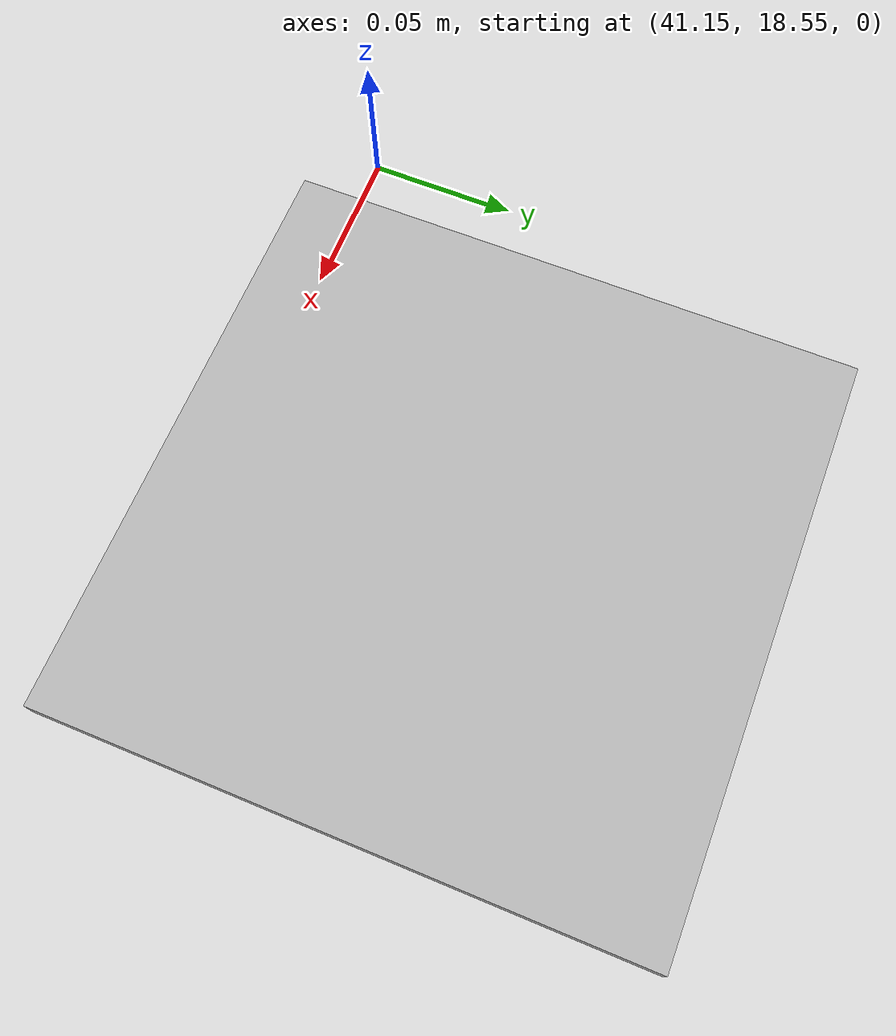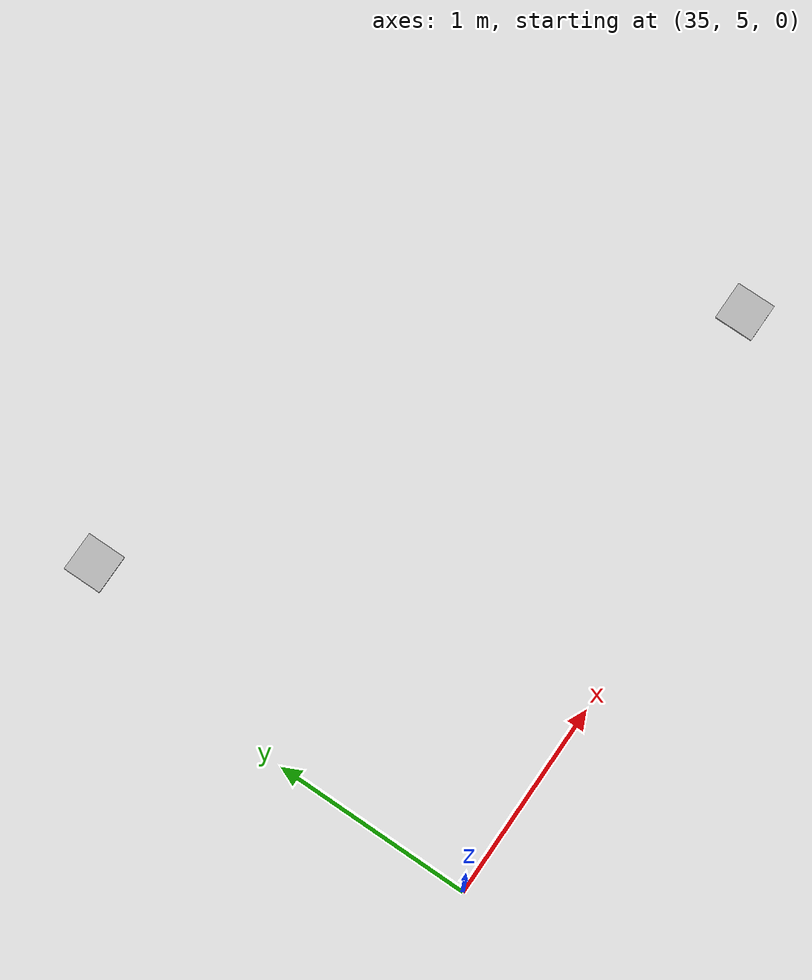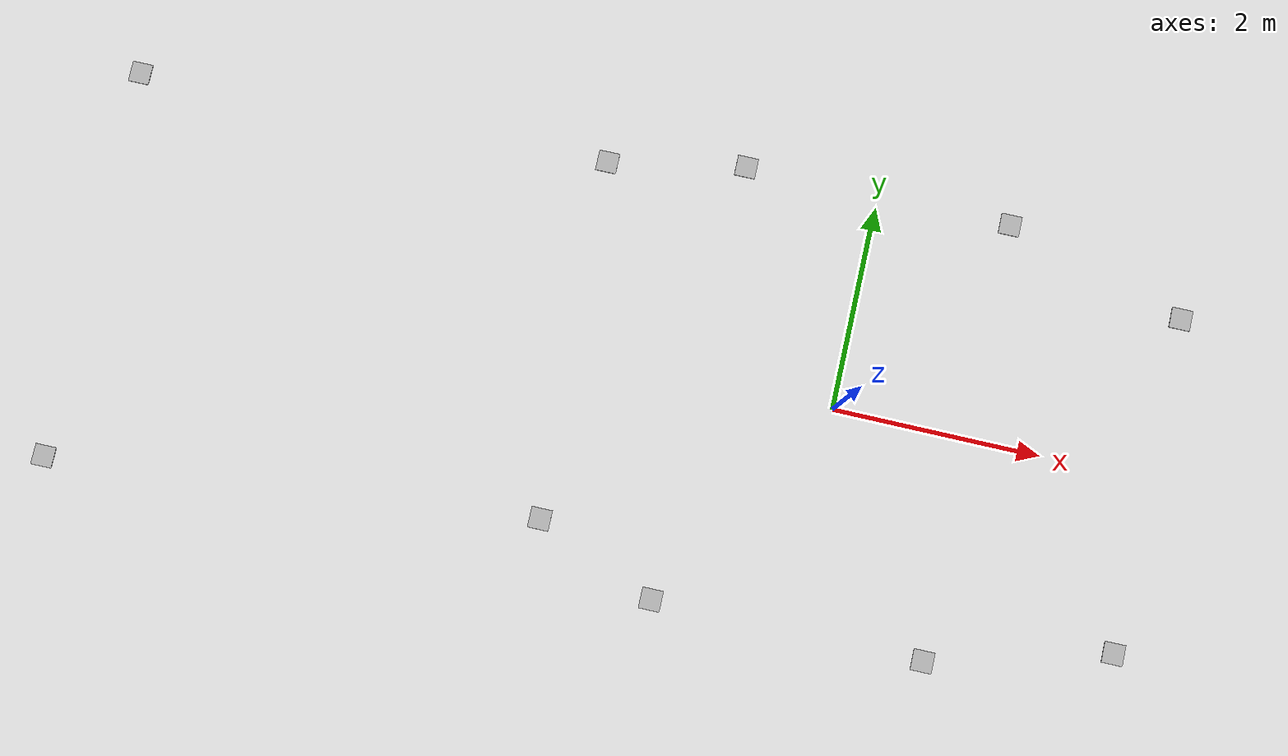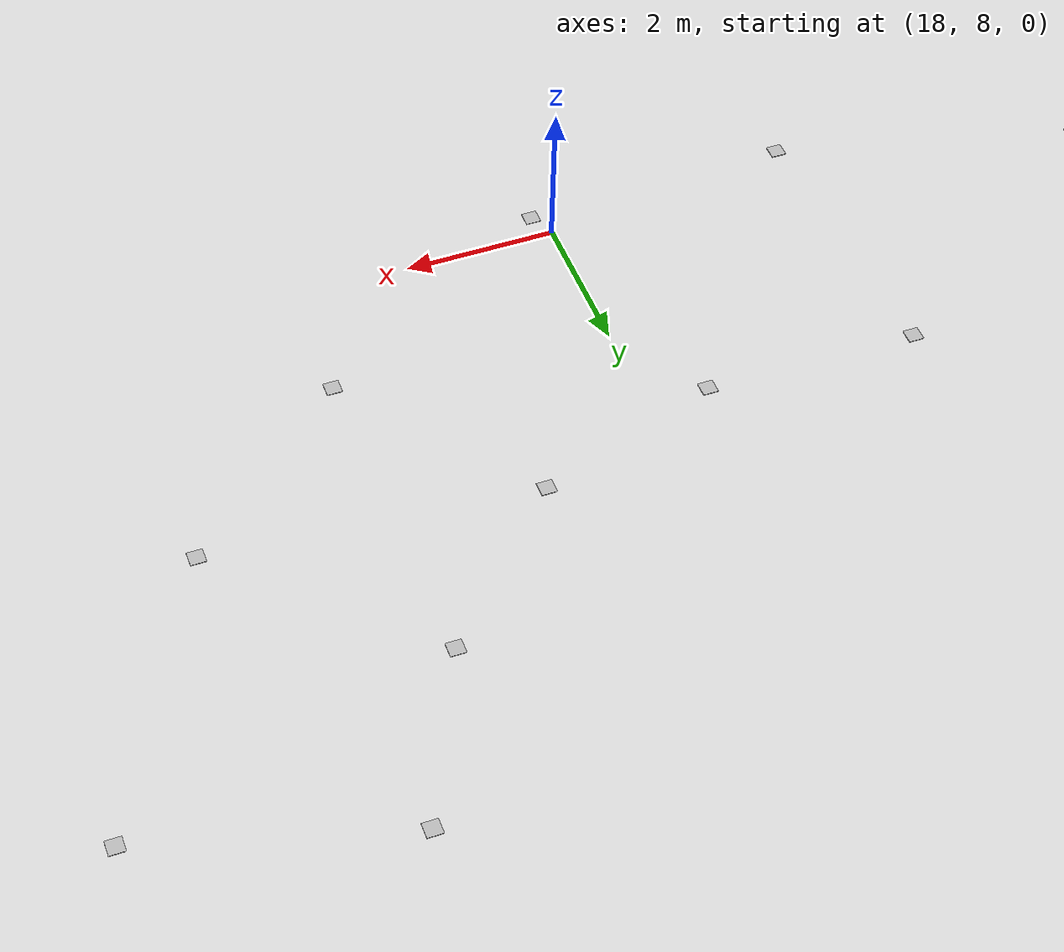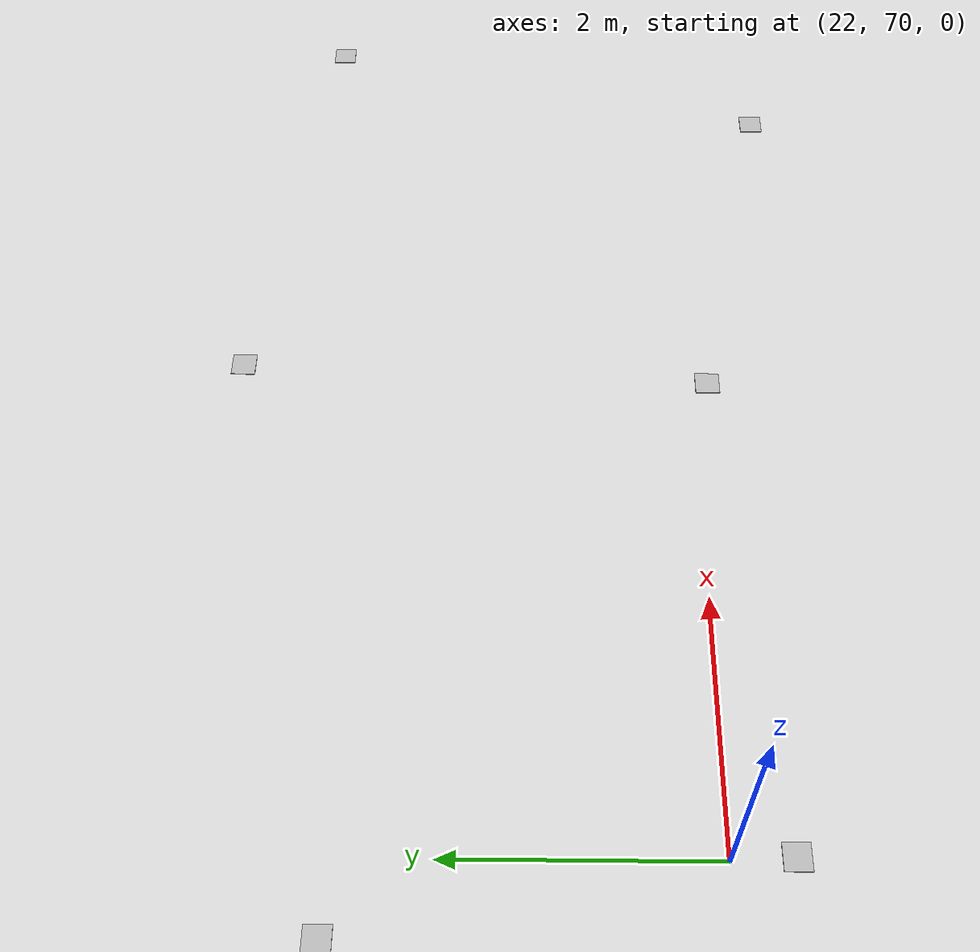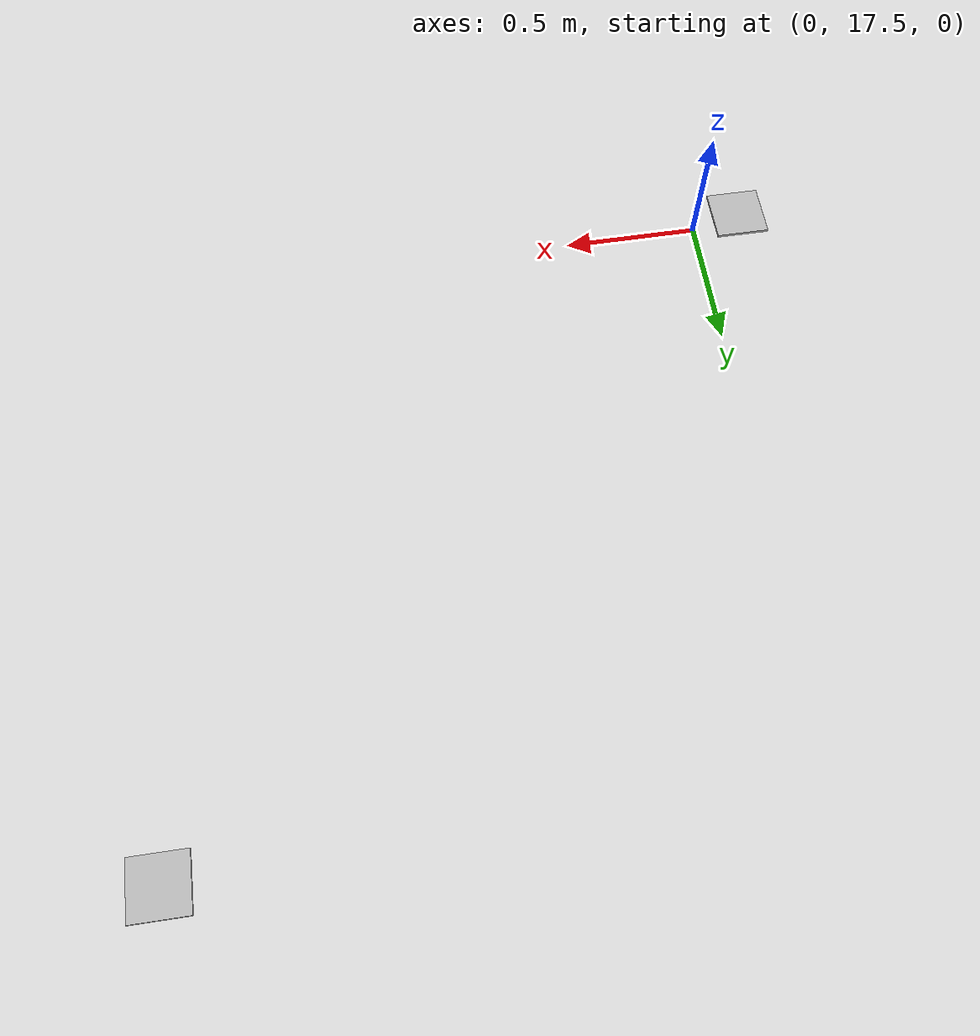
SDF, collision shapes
<?xml version='1.0' encoding='UTF-8'?>
<sdf version="1.4">
  <model name="some track">
    <include>
      <uri>model://cone_yellow</uri>
      <pose>3.027329968496089 -1.6650662607083389 0 0 0 0</pose>
      <name>cone_right</name>
    </include>
    <include>
      <uri>model://cone_yellow</uri>
      <pose>9.474034728033397 -1.9990680012949822 0 0 0 0</pose>
      <name>cone_right</name>
    </include>
    <include>
      <uri>model://cone_yellow</uri>
      <pose>14.392724605239101 -4.6059636627065395 0 0 0 0</pose>
      <name>cone_right</name>
    </include>
    <include>
      <uri>model://cone_yellow</uri>
      <pose>21.47315055272353 -6.16888157465029 0 0 0 0</pose>
      <name>cone_right</name>
    </include>
    <include>
      <uri>model://cone_yellow</uri>
      <pose>28.27962880257163 -4.242374572550827 0 0 0 0</pose>
      <name>cone_right</name>
    </include>
    <include>
      <uri>model://cone_yellow</uri>
      <pose>33.79515887836171 0.0746154102028318 0 0 0 0</pose>
      <name>cone_right</name>
    </include>
    <include>
      <uri>model://cone_yellow</uri>
      <pose>37.97875054252228 5.429926051759233 0 0 0 0</pose>
      <name>cone_right</name>
    </include>
    <include>
      <uri>model://cone_yellow</uri>
      <pose>40.45887580009664 11.88696595016761 0 0 0 0</pose>
      <name>cone_right</name>
    </include>
    <include>
      <uri>model://cone_yellow</uri>
      <pose>41.267752553381186 18.62989722831308 0 0 0 0</pose>
      <name>cone_right</name>
    </include>
    <include>
      <uri>model://cone_yellow</uri>
      <pose>41.04125478771543 25.26421154580791 0 0 0 0</pose>
      <name>cone_right</name>
    </include>
    <include>
      <uri>model://cone_yellow</uri>
      <pose>40.485133027038636 31.70694705922904 0 0 0 0</pose>
      <name>cone_right</name>
    </include>
    <include>
      <uri>model://cone_yellow</uri>
      <pose>40.236905148028534 37.999603327788414 0 0 0 0</pose>
      <name>cone_right</name>
    </include>
    <include>
      <uri>model://cone_yellow</uri>
      <pose>40.61943882001937 44.24708126243079 0 0 0 0</pose>
      <name>cone_right</name>
    </include>
    <include>
      <uri>model://cone_yellow</uri>
      <pose>41.4404427352798 50.56251065915522 0 0 0 0</pose>
      <name>cone_right</name>
    </include>
    <include>
      <uri>model://cone_yellow</uri>
      <pose>41.47405207661533 57.27677329995261 0 0 0 0</pose>
      <name>cone_right</name>
    </include>
    <include>
      <uri>model://cone_yellow</uri>
      <pose>21.468290092959084 72.7419892074473 0 0 0 0</pose>
      <name>cone_right</name>
    </include>
    <include>
      <uri>model://cone_yellow</uri>
      <pose>10.531979037203268 55.6582248911712 0 0 0 0</pose>
      <name>cone_right</name>
    </include>
    <include>
      <uri>model://cone_yellow</uri>
      <pose>10.531732854243629 48.89809797176127 0 0 0 0</pose>
      <name>cone_right</name>
    </include>
    <include>
      <uri>model://cone_yellow</uri>
      <pose>12.10143926226985 42.26140099305921 0 0 0 0</pose>
      <name>cone_right</name>
    </include>
    <include>
      <uri>model://cone_yellow</uri>
      <pose>15.151593644037982 36.18519415401645 0 0 0 0</pose>
      <name>cone_right</name>
    </include>
    <include>
      <uri>model://cone_yellow</uri>
      <pose>18.945296068769437 30.82137605421312 0 0 0 0</pose>
      <name>cone_right</name>
    </include>
    <include>
      <uri>model://cone_yellow</uri>
      <pose>22.005079024603376 25.43415281728733 0 0 0 0</pose>
      <name>cone_right</name>
    </include>
    <include>
      <uri>model://cone_yellow</uri>
      <pose>23.107156590107863 19.561500303759743 0 0 0 0</pose>
      <name>cone_right</name>
    </include>
    <include>
      <uri>model://cone_yellow</uri>
      <pose>6.487660632547149 15.298738351433244 0 0 0 0</pose>
      <name>cone_right</name>
    </include>
    <include>
      <uri>model://cone_yellow</uri>
      <pose>2.1479658842320073 19.693639128497594 0 0 0 0</pose>
      <name>cone_right</name>
    </include>
    <include>
      <uri>model://cone_yellow</uri>
      <pose>-1.95289864727353 24.446736623546297 0 0 0 0</pose>
      <name>cone_right</name>
    </include>
    <include>
      <uri>model://cone_yellow</uri>
      <pose>-4.364739529925682 29.780340803077365 0 0 0 0</pose>
      <name>cone_right</name>
    </include>
    <include>
      <uri>model://cone_yellow</uri>
      <pose>-6.295214213840515 35.93227462158473 0 0 0 0</pose>
      <name>cone_right</name>
    </include>
    <include>
      <uri>model://cone_yellow</uri>
      <pose>-9.183003450733308 42.01716439235755 0 0 0 0</pose>
      <name>cone_right</name>
    </include>
    <include>
      <uri>model://cone_yellow</uri>
      <pose>-14.206972445681645 46.91930906005257 0 0 0 0</pose>
      <name>cone_right</name>
    </include>
    <include>
      <uri>model://cone_yellow</uri>
      <pose>-27.812226412000488 44.31033770908859 0 0 0 0</pose>
      <name>cone_right</name>
    </include>
    <include>
      <uri>model://cone_yellow</uri>
      <pose>-30.7227918264037 38.25573705340714 0 0 0 0</pose>
      <name>cone_right</name>
    </include>
    <include>
      <uri>model://cone_yellow</uri>
      <pose>-31.87105946999347 31.436656192780084 0 0 0 0</pose>
      <name>cone_right</name>
    </include>
    <include>
      <uri>model://cone_yellow</uri>
      <pose>-31.921430435181996 24.746050327414082 0 0 0 0</pose>
      <name>cone_right</name>
    </include>
    <include>
      <uri>model://cone_yellow</uri>
      <pose>-30.126745471980826 18.1692816399225 0 0 0 0</pose>
      <name>cone_right</name>
    </include>
    <include>
      <uri>model://cone_yellow</uri>
      <pose>-27.46536094129992 12.110308763627812 0 0 0 0</pose>
      <name>cone_right</name>
    </include>
    <include>
      <uri>model://cone_yellow</uri>
      <pose>-24.774914642741656 6.145141590855151 0 0 0 0</pose>
      <name>cone_right</name>
    </include>
    <include>
      <uri>model://cone_yellow</uri>
      <pose>-19.75354707405777 1.164364422226377 0 0 0 0</pose>
      <name>cone_right</name>
    </include>
    <include>
      <uri>model://cone_yellow</uri>
      <pose>-13.33687252409103 -1.591891144842337 0 0 0 0</pose>
      <name>cone_right</name>
    </include>
    <include>
      <uri>model://cone_yellow</uri>
      <pose>-2.48520590420668 -1.618397313359118 0 0 0 0</pose>
      <name>cone_right</name>
    </include>
    <include>
      <uri>model://cone_yellow</uri>
      <pose>-7.209244203734663 -2.072631765236814 0 0 0 0</pose>
      <name>cone_right</name>
    </include>
    <include>
      <uri>model://cone_yellow</uri>
      <pose>40.48537324342291 62.246966620644244 0 0 0 0</pose>
      <name>cone_right</name>
    </include>
    <include>
      <uri>model://cone_yellow</uri>
      <pose>38.16877753884669 67.37981592686215 0 0 0 0</pose>
      <name>cone_right</name>
    </include>
    <include>
      <uri>model://cone_yellow</uri>
      <pose>34.353208143074085 70.74115087075707 0 0 0 0</pose>
      <name>cone_right</name>
    </include>
    <include>
      <uri>model://cone_yellow</uri>
      <pose>30.073625637084753 73.22934625715374 0 0 0 0</pose>
      <name>cone_right</name>
    </include>
    <include>
      <uri>model://cone_yellow</uri>
      <pose>26.170048316260846 73.78136729242178 0 0 0 0</pose>
      <name>cone_right</name>
    </include>
    <include>
      <uri>model://cone_yellow</uri>
      <pose>18.106598193952877 71.02126211608163 0 0 0 0</pose>
      <name>cone_right</name>
    </include>
    <include>
      <uri>model://cone_yellow</uri>
      <pose>14.508603946223769 67.42326786835254 0 0 0 0</pose>
      <name>cone_right</name>
    </include>
    <include>
      <uri>model://cone_yellow</uri>
      <pose>22.493193920636298 16.11488414388678 0 0 0 0</pose>
      <name>cone_right</name>
    </include>
    <include>
      <uri>model://cone_yellow</uri>
      <pose>21.458154479508746 13.946230076762387 0 0 0 0</pose>
      <name>cone_right</name>
    </include>
    <include>
      <uri>model://cone_yellow</uri>
      <pose>19.634513559426868 12.073301564245867 0 0 0 0</pose>
      <name>cone_right</name>
    </include>
    <include>
      <uri>model://cone_yellow</uri>
      <pose>17.1701339376946 11.235412492856899 0 0 0 0</pose>
      <name>cone_right</name>
    </include>
    <include>
      <uri>model://cone_yellow</uri>
      <pose>14.360741168919823 11.284700085291544 0 0 0 0</pose>
      <name>cone_right</name>
    </include>
    <include>
      <uri>model://cone_yellow</uri>
      <pose>11.649923585014331 11.580425639899413 0 0 0 0</pose>
      <name>cone_right</name>
    </include>
    <include>
      <uri>model://cone_yellow</uri>
      <pose>9.185543963282068 13.009765820504125 0 0 0 0</pose>
      <name>cone_right</name>
    </include>
    <include>
      <uri>model://cone_yellow</uri>
      <pose>-18.31693261525001 48.54611996588339 0 0 0 0</pose>
      <name>cone_right</name>
    </include>
    <include>
      <uri>model://cone_yellow</uri>
      <pose>-21.816351678109818 48.64469515075268 0 0 0 0</pose>
      <name>cone_right</name>
    </include>
    <include>
      <uri>model://cone_yellow</uri>
      <pose>-25.365058333404278 47.461792932321195 0 0 0 0</pose>
      <name>cone_right</name>
    </include>
    <include>
      <uri>model://cone_yellow</uri>
      <pose>11.725968097581287 62.08966676907369 0 0 0 0</pose>
      <name>cone_right</name>
    </include>
    <include>
      <uri>model://cone_blue</uri>
      <pose>3.070187802835974 1.5846511433186166 0 0 0 0</pose>
      <name>cone_left</name>
    </include>
    <include>
      <uri>model://cone_blue</uri>
      <pose>9.80820676018408 1.2337062025318613 0 0 0 0</pose>
      <name>cone_left</name>
    </include>
    <include>
      <uri>model://cone_blue</uri>
      <pose>16.23973611310383 -1.9318192219899835 0 0 0 0</pose>
      <name>cone_left</name>
    </include>
    <include>
      <uri>model://cone_blue</uri>
      <pose>21.542439637078992 -2.919620270478343 0 0 0 0</pose>
      <name>cone_left</name>
    </include>
    <include>
      <uri>model://cone_blue</uri>
      <pose>27.05163500235222 -1.2332997601503954 0 0 0 0</pose>
      <name>cone_left</name>
    </include>
    <include>
      <uri>model://cone_blue</uri>
      <pose>31.59603368900195 2.4675943907881996 0 0 0 0</pose>
      <name>cone_left</name>
    </include>
    <include>
      <uri>model://cone_blue</uri>
      <pose>35.28562026193866 7.2491427215936906 0 0 0 0</pose>
      <name>cone_left</name>
    </include>
    <include>
      <uri>model://cone_blue</uri>
      <pose>37.3433140936881 12.812047164743213 0 0 0 0</pose>
      <name>cone_left</name>
    </include>
    <include>
      <uri>model://cone_blue</uri>
      <pose>38.024752789804225 18.84309322602353 0 0 0 0</pose>
      <name>cone_left</name>
    </include>
    <include>
      <uri>model://cone_blue</uri>
      <pose>37.797189944751395 25.06788708313273 0 0 0 0</pose>
      <name>cone_left</name>
    </include>
    <include>
      <uri>model://cone_blue</uri>
      <pose>37.24730033318942 31.425985413018875 0 0 0 0</pose>
      <name>cone_left</name>
    </include>
    <include>
      <uri>model://cone_blue</uri>
      <pose>36.9873587002369 37.94530891145644 0 0 0 0</pose>
      <name>cone_left</name>
    </include>
    <include>
      <uri>model://cone_blue</uri>
      <pose>37.38148165161911 44.52660474195515 0 0 0 0</pose>
      <name>cone_left</name>
    </include>
    <include>
      <uri>model://cone_blue</uri>
      <pose>38.21694627221841 50.97672141786475 0 0 0 0</pose>
      <name>cone_left</name>
    </include>
    <include>
      <uri>model://cone_blue</uri>
      <pose>38.22936739461043 57.09097417626596 0 0 0 0</pose>
      <name>cone_left</name>
    </include>
    <include>
      <uri>model://cone_blue</uri>
      <pose>22.043851567638736 69.54335997153005 0 0 0 0</pose>
      <name>cone_left</name>
    </include>
    <include>
      <uri>model://cone_blue</uri>
      <pose>13.748524027666466 55.19310305301899 0 0 0 0</pose>
      <name>cone_left</name>
    </include>
    <include>
      <uri>model://cone_blue</uri>
      <pose>13.776792867806211 49.07722225369201 0 0 0 0</pose>
      <name>cone_left</name>
    </include>
    <include>
      <uri>model://cone_blue</uri>
      <pose>15.208996468169403 43.21302497975867 0 0 0 0</pose>
      <name>cone_left</name>
    </include>
    <include>
      <uri>model://cone_blue</uri>
      <pose>17.96591394340118 37.810648322116016 0 0 0 0</pose>
      <name>cone_left</name>
    </include>
    <include>
      <uri>model://cone_blue</uri>
      <pose>21.579153316610977 32.72539706197343 0 0 0 0</pose>
      <name>cone_left</name>
    </include>
    <include>
      <uri>model://cone_blue</uri>
      <pose>24.917193185937712 26.877098107780352 0 0 0 0</pose>
      <name>cone_left</name>
    </include>
    <include>
      <uri>model://cone_blue</uri>
      <pose>26.343754795627575 19.856342729517245 0 0 0 0</pose>
      <name>cone_left</name>
    </include>
    <include>
      <uri>model://cone_blue</uri>
      <pose>4.47619000976062 12.745997484508678 0 0 0 0</pose>
      <name>cone_left</name>
    </include>
    <include>
      <uri>model://cone_blue</uri>
      <pose>-0.19434105518186262 17.44061933240755 0 0 0 0</pose>
      <name>cone_left</name>
    </include>
    <include>
      <uri>model://cone_blue</uri>
      <pose>-4.502874499512328 22.431761895913464 0 0 0 0</pose>
      <name>cone_left</name>
    </include>
    <include>
      <uri>model://cone_blue</uri>
      <pose>-7.405920149916325 28.634164360903945 0 0 0 0</pose>
      <name>cone_left</name>
    </include>
    <include>
      <uri>model://cone_blue</uri>
      <pose>-9.389363627671026 34.93792085913784 0 0 0 0</pose>
      <name>cone_left</name>
    </include>
    <include>
      <uri>model://cone_blue</uri>
      <pose>-12.022179405003532 40.435526032714684 0 0 0 0</pose>
      <name>cone_left</name>
    </include>
    <include>
      <uri>model://cone_blue</uri>
      <pose>-16.175053984102117 44.332968970634994 0 0 0 0</pose>
      <name>cone_left</name>
    </include>
    <include>
      <uri>model://cone_blue</uri>
      <pose>-25.11505126702607 42.497123370591275 0 0 0 0</pose>
      <name>cone_left</name>
    </include>
    <include>
      <uri>model://cone_blue</uri>
      <pose>-27.728285527579843 36.992632930104456 0 0 0 0</pose>
      <name>cone_left</name>
    </include>
    <include>
      <uri>model://cone_blue</uri>
      <pose>-28.638520666221325 31.10021469399115 0 0 0 0</pose>
      <name>cone_left</name>
    </include>
    <include>
      <uri>model://cone_blue</uri>
      <pose>-28.673686997517756 24.86713939838598 0 0 0 0</pose>
      <name>cone_left</name>
    </include>
    <include>
      <uri>model://cone_blue</uri>
      <pose>-27.070770357207437 19.275408259205204 0 0 0 0</pose>
      <name>cone_left</name>
    </include>
    <include>
      <uri>model://cone_blue</uri>
      <pose>-24.485811338887743 13.408301123684465 0 0 0 0</pose>
      <name>cone_left</name>
    </include>
    <include>
      <uri>model://cone_blue</uri>
      <pose>-21.87073133400932 7.603983360643947 0 0 0 0</pose>
      <name>cone_left</name>
    </include>
    <include>
      <uri>model://cone_blue</uri>
      <pose>-17.775153145455434 3.742824711482237 0 0 0 0</pose>
      <name>cone_left</name>
    </include>
    <include>
      <uri>model://cone_blue</uri>
      <pose>-12.356808084130934 1.5068140191779038 0 0 0 0</pose>
      <name>cone_left</name>
    </include>
    <include>
      <uri>model://cone_blue</uri>
      <pose>-2.621476239769983 1.8792079660991021 0 0 0 0</pose>
      <name>cone_left</name>
    </include>
    <include>
      <uri>model://cone_blue</uri>
      <pose>-7.254667648922435 1.742937630535792 0 0 0 0</pose>
      <name>cone_left</name>
    </include>
    <include>
      <uri>model://cone_blue</uri>
      <pose>37.351155525466844 61.06595704576225 0 0 0 0</pose>
      <name>cone_left</name>
    </include>
    <include>
      <uri>model://cone_blue</uri>
      <pose>35.352523937205 64.74525610597155 0 0 0 0</pose>
      <name>cone_left</name>
    </include>
    <include>
      <uri>model://cone_blue</uri>
      <pose>32.49084689037555 67.97032071430314 0 0 0 0</pose>
      <name>cone_left</name>
    </include>
    <include>
      <uri>model://cone_blue</uri>
      <pose>29.127303862339563 69.24690878843441 0 0 0 0</pose>
      <name>cone_left</name>
    </include>
    <include>
      <uri>model://cone_blue</uri>
      <pose>26.012328020469983 69.87778997159786 0 0 0 0</pose>
      <name>cone_left</name>
    </include>
    <include>
      <uri>model://cone_blue</uri>
      <pose>19.14163763508043 67.57113064565647 0 0 0 0</pose>
      <name>cone_left</name>
    </include>
    <include>
      <uri>model://cone_blue</uri>
      <pose>16.627970420913513 64.6631626920124 0 0 0 0</pose>
      <name>cone_left</name>
    </include>
    <include>
      <uri>model://cone_blue</uri>
      <pose>25.746175021322887 15.178419887628515 0 0 0 0</pose>
      <name>cone_left</name>
    </include>
    <include>
      <uri>model://cone_blue</uri>
      <pose>23.873246508806364 11.6790008247687 0 0 0 0</pose>
      <name>cone_left</name>
    </include>
    <include>
      <uri>model://cone_blue</uri>
      <pose>21.556729664378032 9.658209534948249 0 0 0 0</pose>
      <name>cone_left</name>
    </include>
    <include>
      <uri>model://cone_blue</uri>
      <pose>18.155885786387508 7.637418245127787 0 0 0 0</pose>
      <name>cone_left</name>
    </include>
    <include>
      <uri>model://cone_blue</uri>
      <pose>14.557891538658403 7.5388430602585 0 0 0 0</pose>
      <name>cone_left</name>
    </include>
    <include>
      <uri>model://cone_blue</uri>
      <pose>10.565596551452131 8.573882501386048 0 0 0 0</pose>
      <name>cone_left</name>
    </include>
    <include>
      <uri>model://cone_blue</uri>
      <pose>7.657628597808063 10.298948236598637 0 0 0 0</pose>
      <name>cone_left</name>
    </include>
    <include>
      <uri>model://cone_blue</uri>
      <pose>-18.80980853959646 45.2931388651968 0 0 0 0</pose>
      <name>cone_left</name>
    </include>
    <include>
      <uri>model://cone_blue</uri>
      <pose>-22.112077232717695 45.14527608789287 0 0 0 0</pose>
      <name>cone_left</name>
    </include>
    <include>
      <uri>model://cone_blue</uri>
      <pose>14.68539804503412 60.10621903833402 0 0 0 0</pose>
      <name>cone_left</name>
    </include>
    <include>
      <uri>model://cone_orange_big</uri>
      <pose>-1.3 2.125 0 0 0 0</pose>
      <name>cone_orange_big</name>
    </include>
    <include>
      <uri>model://cone_orange_big</uri>
      <pose>-1.3 -2.125 0 0 0 0</pose>
      <name>cone_orange_big</name>
    </include>
    <include>
      <uri>model://cone_orange_big</uri>
      <pose>1.3 2.125 0 0 0 0</pose>
      <name>cone_orange_big</name>
    </include>
    <include>
      <uri>model://cone_orange_big</uri>
      <pose>1.3 -2.125 0 0 0 0</pose>
      <name>cone_orange_big</name>
    </include>
  </model>
</sdf>

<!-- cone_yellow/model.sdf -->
<sdf version='1.4'>
  <model name="cone_yellow">
    <link name="link">
    <collision name="collision"><geometry><box><size> 0.2 0.2 0.01</size>
             </box></geometry></collision>
      <visual name="visual">
        <geometry>
          <mesh>
            <uri>model://YellowCone.dae</uri>
            <scale>1 1 1</scale>
          </mesh>
        </geometry>
        <material>
            <script>
              <uri>model://cone_yellow/materials/scripts</uri>
              <uri>model://cone_yellow/materials/textures</uri>
              <name>cone_yellow/Image</name>
            </script>
        </material>
      </visual>
    </link>
  </model>
</sdf>

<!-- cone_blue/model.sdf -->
<sdf version='1.4'>
  <model name="cone_blue">
    <link name="link">
    <collision name="collision"><geometry><box><size> 0.2 0.2 0.01</size>
             </box></geometry></collision>
      <visual name="visual">
        <geometry>
          <mesh>
            <uri>model://BlueCone.dae</uri>
            <scale>1 1 1</scale>
          </mesh>
        </geometry>
        <material>
            <script>
              <uri>model://cone_blue/materials/scripts</uri>
              <uri>model://cone_blue/materials/textures</uri>
              <name>cone_blue/Image</name>
            </script>
        </material>
      </visual>
    </link>
  </model>
</sdf>

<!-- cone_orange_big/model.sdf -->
<sdf version='1.4'>
  <model name="cone_orange_big">
    <link name="link">
    <collision name="collision"><geometry><box><size> 0.2 0.2 0.01</size>
             </box></geometry></collision>
      <visual name="visual">
        <geometry>
          <mesh>
            <uri>model://BigOrangeCone.dae</uri>
            <scale>1 1 1</scale>
          </mesh>
        </geometry>
        <material>
            <script>
              <uri>model://cone_orange_big/materials/scripts</uri>
              <uri>model://cone_orange_big/materials/textures</uri>
              <name>cone_orange_big/Image</name>
            </script>
        </material>
      </visual>
    </link>
  </model>
</sdf>
